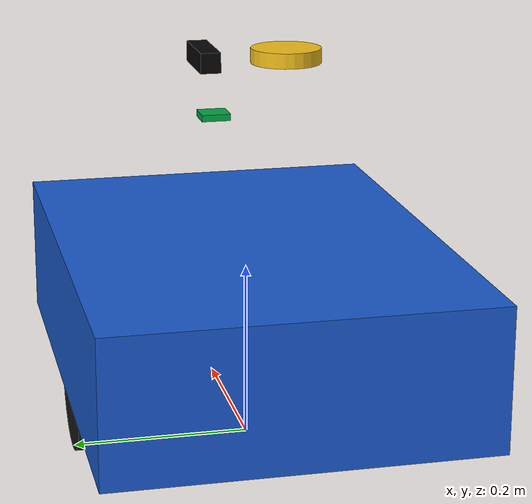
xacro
<?xml version="1.0"?>
<robot xmlns:xacro="http://www.ros.org/wiki/xacro" name="trashbot">
  <!--
    Draft robot model for Sprint 3 robot-modeling tasks.
    Replace these dimensions with measured values after the chassis is fixed.
  -->
  <xacro:property name="pi" value="3.141592653589793"/>

  <xacro:property name="base_length" value="0.58"/>
  <xacro:property name="base_width" value="0.42"/>
  <xacro:property name="base_height" value="0.16"/>
  <xacro:property name="base_mass" value="12.0"/>

  <xacro:property name="wheel_radius" value="0.075"/>
  <xacro:property name="wheel_width" value="0.045"/>
  <xacro:property name="wheel_track" value="0.36"/>
  <xacro:property name="wheel_x" value="0.0"/>
  <xacro:property name="wheel_mass" value="0.6"/>

  <xacro:property name="caster_radius" value="0.035"/>
  <xacro:property name="caster_x" value="0.22"/>

  <!-- Sensor offsets from base_link. These are placeholders until measured. -->
  <xacro:property name="camera_x" value="0.24"/>
  <xacro:property name="camera_y" value="0.0"/>
  <xacro:property name="camera_z" value="0.24"/>
  <xacro:property name="camera_roll" value="0.0"/>
  <xacro:property name="camera_pitch" value="0.0"/>
  <xacro:property name="camera_yaw" value="0.0"/>

  <xacro:property name="imu_x" value="0.18"/>
  <xacro:property name="imu_y" value="0.0"/>
  <xacro:property name="imu_z" value="0.18"/>
  <xacro:property name="imu_roll" value="0.0"/>
  <xacro:property name="imu_pitch" value="0.0"/>
  <xacro:property name="imu_yaw" value="0.0"/>

  <xacro:property name="gps_x" value="-0.18"/>
  <xacro:property name="gps_y" value="0.0"/>
  <xacro:property name="gps_z" value="0.32"/>

  <material name="trashbot_blue">
    <color rgba="0.1 0.35 0.8 1.0"/>
  </material>
  <material name="sensor_black">
    <color rgba="0.02 0.02 0.02 1.0"/>
  </material>
  <material name="wheel_gray">
    <color rgba="0.08 0.08 0.08 1.0"/>
  </material>
  <material name="imu_green">
    <color rgba="0.0 0.65 0.25 1.0"/>
  </material>
  <material name="gps_yellow">
    <color rgba="0.95 0.75 0.1 1.0"/>
  </material>

  <xacro:macro name="box_inertial" params="mass x y z">
    <inertial>
      <mass value="${mass}"/>
      <inertia
        ixx="${mass * (y*y + z*z) / 12.0}"
        ixy="0.0"
        ixz="0.0"
        iyy="${mass * (x*x + z*z) / 12.0}"
        iyz="0.0"
        izz="${mass * (x*x + y*y) / 12.0}"/>
    </inertial>
  </xacro:macro>

  <xacro:macro name="cylinder_inertial" params="mass radius length">
    <inertial>
      <mass value="${mass}"/>
      <inertia
        ixx="${mass * (3.0 * radius * radius + length * length) / 12.0}"
        ixy="0.0"
        ixz="0.0"
        iyy="${mass * radius * radius / 2.0}"
        iyz="0.0"
        izz="${mass * (3.0 * radius * radius + length * length) / 12.0}"/>
    </inertial>
  </xacro:macro>

  <link name="base_footprint"/>

  <link name="base_link">
    <visual>
      <origin xyz="0 0 0" rpy="0 0 0"/>
      <geometry>
        <box size="${base_length} ${base_width} ${base_height}"/>
      </geometry>
      <material name="trashbot_blue"/>
    </visual>
    <collision>
      <origin xyz="0 0 0" rpy="0 0 0"/>
      <geometry>
        <box size="${base_length} ${base_width} ${base_height}"/>
      </geometry>
    </collision>
    <xacro:box_inertial mass="${base_mass}" x="${base_length}" y="${base_width}" z="${base_height}"/>
  </link>

  <joint name="base_footprint_to_base_link" type="fixed">
    <parent link="base_footprint"/>
    <child link="base_link"/>
    <origin xyz="0 0 ${wheel_radius + base_height / 2.0}" rpy="0 0 0"/>
  </joint>

  <link name="left_wheel_link">
    <visual>
      <origin xyz="0 0 0" rpy="${pi / 2.0} 0 0"/>
      <geometry>
        <cylinder radius="${wheel_radius}" length="${wheel_width}"/>
      </geometry>
      <material name="wheel_gray"/>
    </visual>
    <collision>
      <origin xyz="0 0 0" rpy="${pi / 2.0} 0 0"/>
      <geometry>
        <cylinder radius="${wheel_radius}" length="${wheel_width}"/>
      </geometry>
    </collision>
    <xacro:cylinder_inertial mass="${wheel_mass}" radius="${wheel_radius}" length="${wheel_width}"/>
  </link>

  <joint name="left_wheel_joint" type="continuous">
    <parent link="base_link"/>
    <child link="left_wheel_link"/>
    <origin xyz="${wheel_x} ${wheel_track / 2.0} ${-base_height / 2.0}" rpy="0 0 0"/>
    <axis xyz="0 1 0"/>
  </joint>

  <link name="right_wheel_link">
    <visual>
      <origin xyz="0 0 0" rpy="${pi / 2.0} 0 0"/>
      <geometry>
        <cylinder radius="${wheel_radius}" length="${wheel_width}"/>
      </geometry>
      <material name="wheel_gray"/>
    </visual>
    <collision>
      <origin xyz="0 0 0" rpy="${pi / 2.0} 0 0"/>
      <geometry>
        <cylinder radius="${wheel_radius}" length="${wheel_width}"/>
      </geometry>
    </collision>
    <xacro:cylinder_inertial mass="${wheel_mass}" radius="${wheel_radius}" length="${wheel_width}"/>
  </link>

  <joint name="right_wheel_joint" type="continuous">
    <parent link="base_link"/>
    <child link="right_wheel_link"/>
    <origin xyz="${wheel_x} ${-wheel_track / 2.0} ${-base_height / 2.0}" rpy="0 0 0"/>
    <axis xyz="0 1 0"/>
  </joint>

  <link name="front_caster_link">
    <visual>
      <geometry>
        <sphere radius="${caster_radius}"/>
      </geometry>
      <material name="wheel_gray"/>
    </visual>
    <collision>
      <geometry>
        <sphere radius="${caster_radius}"/>
      </geometry>
    </collision>
    <xacro:box_inertial mass="0.2" x="${caster_radius}" y="${caster_radius}" z="${caster_radius}"/>
  </link>

  <joint name="front_caster_joint" type="fixed">
    <parent link="base_link"/>
    <child link="front_caster_link"/>
    <origin xyz="${caster_x} 0 ${-base_height / 2.0}" rpy="0 0 0"/>
  </joint>

  <link name="camera_link">
    <visual>
      <geometry>
        <box size="0.09 0.025 0.025"/>
      </geometry>
      <material name="sensor_black"/>
    </visual>
    <collision>
      <geometry>
        <box size="0.09 0.025 0.025"/>
      </geometry>
    </collision>
    <xacro:box_inertial mass="0.08" x="0.09" y="0.025" z="0.025"/>
  </link>

  <joint name="base_to_camera" type="fixed">
    <parent link="base_link"/>
    <child link="camera_link"/>
    <origin xyz="${camera_x} ${camera_y} ${camera_z}" rpy="${camera_roll} ${camera_pitch} ${camera_yaw}"/>
  </joint>

  <!-- D435i optical frame convention: z forward, x right, y down. -->
  <link name="camera_color_optical_frame"/>
  <joint name="camera_link_to_color_optical_frame" type="fixed">
    <parent link="camera_link"/>
    <child link="camera_color_optical_frame"/>
    <origin xyz="0 0 0" rpy="${-pi / 2.0} 0 ${-pi / 2.0}"/>
  </joint>

  <link name="camera_depth_optical_frame"/>
  <joint name="camera_link_to_depth_optical_frame" type="fixed">
    <parent link="camera_link"/>
    <child link="camera_depth_optical_frame"/>
    <origin xyz="0 0 0" rpy="${-pi / 2.0} 0 ${-pi / 2.0}"/>
  </joint>

  <link name="imu_link">
    <visual>
      <geometry>
        <box size="0.035 0.035 0.008"/>
      </geometry>
      <material name="imu_green"/>
    </visual>
    <collision>
      <geometry>
        <box size="0.035 0.035 0.008"/>
      </geometry>
    </collision>
    <xacro:box_inertial mass="0.01" x="0.035" y="0.035" z="0.008"/>
  </link>

  <joint name="base_to_imu" type="fixed">
    <parent link="base_link"/>
    <child link="imu_link"/>
    <origin xyz="${imu_x} ${imu_y} ${imu_z}" rpy="${imu_roll} ${imu_pitch} ${imu_yaw}"/>
  </joint>

  <link name="gps_link">
    <visual>
      <geometry>
        <cylinder radius="0.035" length="0.015"/>
      </geometry>
      <material name="gps_yellow"/>
    </visual>
    <collision>
      <geometry>
        <cylinder radius="0.035" length="0.015"/>
      </geometry>
    </collision>
    <xacro:cylinder_inertial mass="0.04" radius="0.035" length="0.015"/>
  </link>

  <joint name="base_to_gps" type="fixed">
    <parent link="base_link"/>
    <child link="gps_link"/>
    <origin xyz="${gps_x} ${gps_y} ${gps_z}" rpy="0 0 0"/>
  </joint>
</robot>
